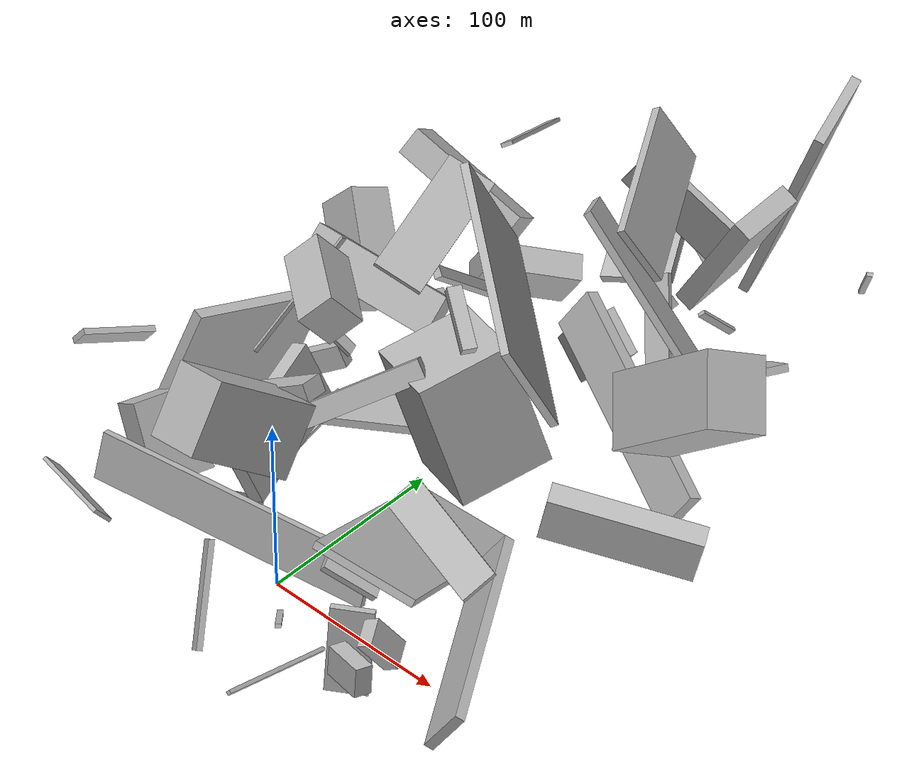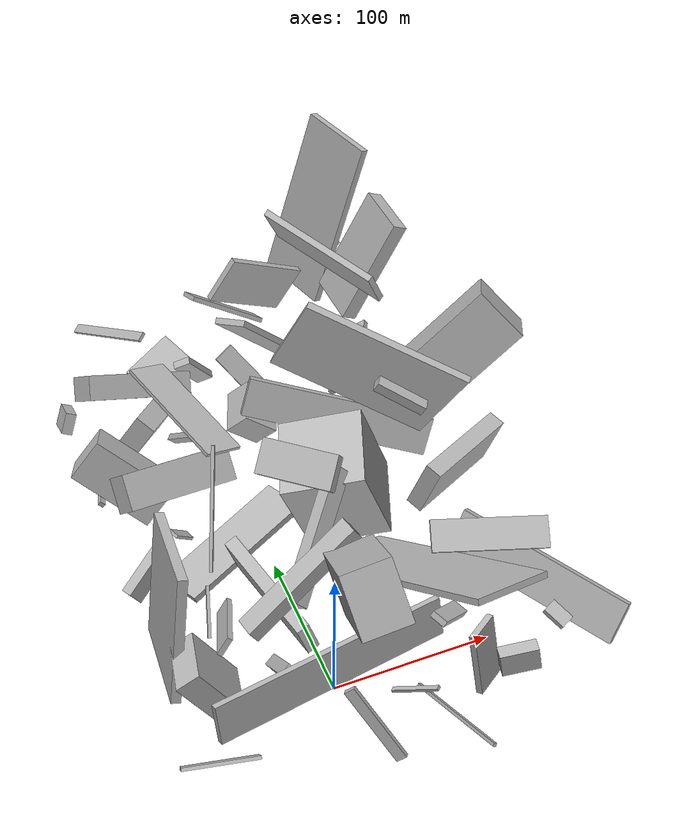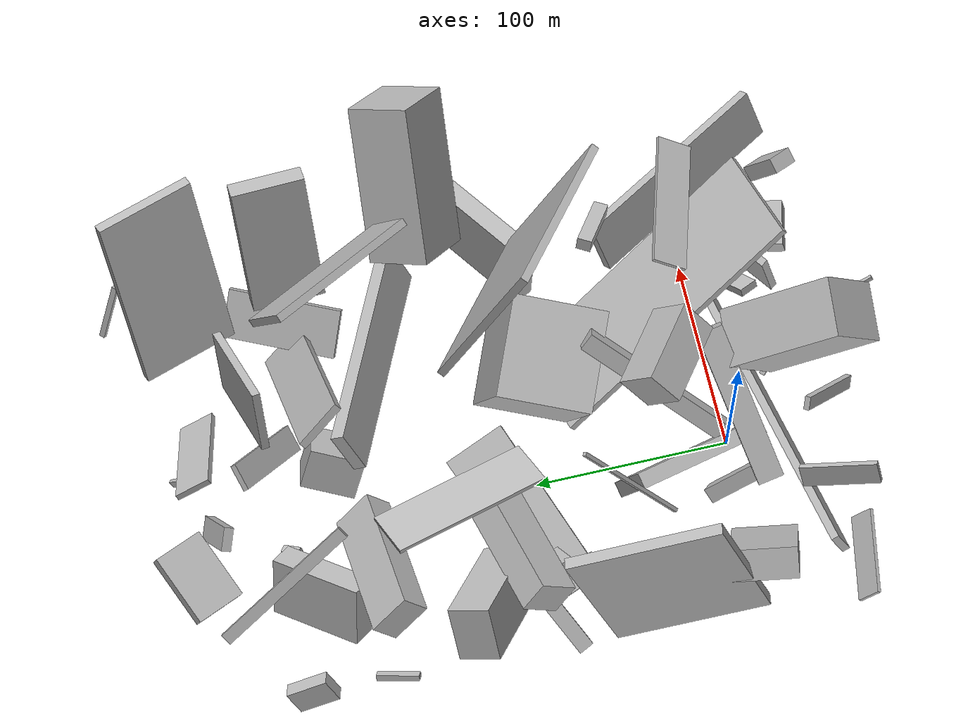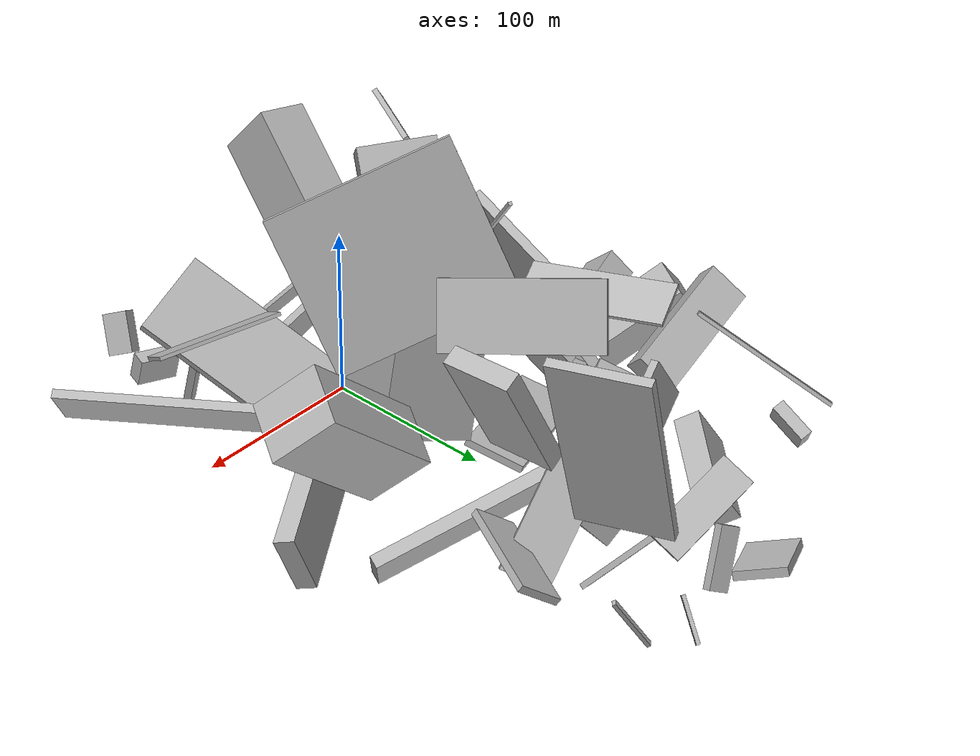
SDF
<sdf version="1.6">
 <world name="default">
  <model name="building_3">
   <static>0</static>
   <pose>-55.28225506362537 196.1160932820637 103.23580506193083 2.6990530904863754 -0.6686548601358759 -1.2108224262797935</pose>
   <link name="link">
    <gravity>0</gravity>
    <pose>0 0 7.5 0 0 0</pose>
    <collision name="collision"><geometry><box><size>23 68 15</size></box></geometry></collision>
    <visual name="visual">
     <cast_shadows>0</cast_shadows>
     <geometry><box><size>23 68 15</size></box></geometry>
     <material>
      <script>
       <uri>model://HANNAS_wall/materials/scripts</uri>
       <uri>model://HANNAS_wall/materials/textures</uri>
       <name>vrc/HANNAS_wall</name>
      </script>
     </material>
    </visual>
   </link>
  </model>
  <model name="building_8">
   <static>0</static>
   <pose>42.81483554489154 18.11997255370308 60.03226280761964 2.0090533513955946 -0.9623262912604077 1.4473765185540202</pose>
   <link name="link">
    <gravity>0</gravity>
    <pose>0 0 26.5 0 0 0</pose>
    <collision name="collision"><geometry><box><size>4 150 53</size></box></geometry></collision>
    <visual name="visual">
     <cast_shadows>0</cast_shadows>
     <geometry><box><size>4 150 53</size></box></geometry>
     <material>
      <script>
       <uri>model://HANNAS_wall/materials/scripts</uri>
       <uri>model://HANNAS_wall/materials/textures</uri>
       <name>vrc/HANNAS_wall</name>
      </script>
     </material>
    </visual>
   </link>
  </model>
  <model name="building_9">
   <static>0</static>
   <pose>55.40457712910734 117.85381674948677 116.89519842510563 0.4024356207725402 -0.32763654302624207 0.8200217314600851</pose>
   <link name="link">
    <gravity>0</gravity>
    <pose>0 0 43.5 0 0 0</pose>
    <collision name="collision"><geometry><box><size>4 99 87</size></box></geometry></collision>
    <visual name="visual">
     <cast_shadows>0</cast_shadows>
     <geometry><box><size>4 99 87</size></box></geometry>
     <material>
      <script>
       <uri>model://HANNAS_wall/materials/scripts</uri>
       <uri>model://HANNAS_wall/materials/textures</uri>
       <name>vrc/HANNAS_wall</name>
      </script>
     </material>
    </visual>
   </link>
  </model>
  <model name="building_22">
   <static>0</static>
   <pose>-9.055808616856012 -22.570312768813796 37.857318943666606 -0.3160825522196778 0.05846673091310445 0.19661354772006312</pose>
   <link name="link">
    <gravity>0</gravity>
    <pose>0 0 12.5 0 0 0</pose>
    <collision name="collision"><geometry><box><size>150 4 25</size></box></geometry></collision>
    <visual name="visual">
     <cast_shadows>0</cast_shadows>
     <geometry><box><size>150 4 25</size></box></geometry>
     <material>
      <script>
       <uri>model://HANNAS_wall/materials/scripts</uri>
       <uri>model://HANNAS_wall/materials/textures</uri>
       <name>vrc/HANNAS_wall</name>
      </script>
     </material>
    </visual>
   </link>
  </model>
  <model name="building_23">
   <static>0</static>
   <pose>98.3337527439675 45.10996295531062 53.80040420355921 1.6647293245427262 -0.9957674719654037 0.4722553468294991</pose>
   <link name="link">
    <gravity>0</gravity>
    <pose>0 0 56.5 0 0 0</pose>
    <collision name="collision"><geometry><box><size>27 5 113</size></box></geometry></collision>
    <visual name="visual">
     <cast_shadows>0</cast_shadows>
     <geometry><box><size>27 5 113</size></box></geometry>
     <material>
      <script>
       <uri>model://HANNAS_wall/materials/scripts</uri>
       <uri>model://HANNAS_wall/materials/textures</uri>
       <name>vrc/HANNAS_wall</name>
      </script>
     </material>
    </visual>
   </link>
  </model>
  <model name="building_25">
   <static>0</static>
   <pose>32.33401957300136 238.51472650263446 98.40388044989416 -0.5680434460506295 0.11449184152743144 -1.4145679435280494</pose>
   <link name="link">
    <gravity>0</gravity>
    <pose>0 0 16.0 0 0 0</pose>
    <collision name="collision"><geometry><box><size>4 59 32</size></box></geometry></collision>
    <visual name="visual">
     <cast_shadows>0</cast_shadows>
     <geometry><box><size>4 59 32</size></box></geometry>
     <material>
      <script>
       <uri>model://HANNAS_wall/materials/scripts</uri>
       <uri>model://HANNAS_wall/materials/textures</uri>
       <name>vrc/HANNAS_wall</name>
      </script>
     </material>
    </visual>
   </link>
  </model>
  <model name="building_27">
   <static>0</static>
   <pose>-58.411665902401865 201.56083246318798 39.52666035498493 -1.8922600408789696 0.49958050123174225 -0.8573434355961012</pose>
   <link name="link">
    <gravity>0</gravity>
    <pose>0 0 24.5 0 0 0</pose>
    <collision name="collision"><geometry><box><size>14 32 49</size></box></geometry></collision>
    <visual name="visual">
     <cast_shadows>0</cast_shadows>
     <geometry><box><size>14 32 49</size></box></geometry>
     <material>
      <script>
       <uri>model://HANNAS_wall/materials/scripts</uri>
       <uri>model://HANNAS_wall/materials/textures</uri>
       <name>vrc/HANNAS_wall</name>
      </script>
     </material>
    </visual>
   </link>
  </model>
  <model name="building_40">
   <static>0</static>
   <pose>14.613063417208839 99.97085694323675 71.01280587332714 1.292325298984231 -0.21804532078687464 1.227320973306203</pose>
   <link name="link">
    <gravity>0</gravity>
    <pose>0 0 25.5 0 0 0</pose>
    <collision name="collision"><geometry><box><size>48 66 51</size></box></geometry></collision>
    <visual name="visual">
     <cast_shadows>0</cast_shadows>
     <geometry><box><size>48 66 51</size></box></geometry>
     <material>
      <script>
       <uri>model://HANNAS_wall/materials/scripts</uri>
       <uri>model://HANNAS_wall/materials/textures</uri>
       <name>vrc/HANNAS_wall</name>
      </script>
     </material>
    </visual>
   </link>
  </model>
  <model name="building_41">
   <static>0</static>
   <pose>17.09584221940473 204.33313077075593 28.518339037300265 -0.7075024303104669 0.24100345131429876 -1.9526094129967237</pose>
   <link name="link">
    <gravity>0</gravity>
    <pose>0 0 10.5 0 0 0</pose>
    <collision name="collision"><geometry><box><size>28 25 21</size></box></geometry></collision>
    <visual name="visual">
     <cast_shadows>0</cast_shadows>
     <geometry><box><size>28 25 21</size></box></geometry>
     <material>
      <script>
       <uri>model://HANNAS_wall/materials/scripts</uri>
       <uri>model://HANNAS_wall/materials/textures</uri>
       <name>vrc/HANNAS_wall</name>
      </script>
     </material>
    </visual>
   </link>
  </model>
  <model name="building_45">
   <static>0</static>
   <pose>71.7340550363893 171.9143882764367 42.41271891080815 0.5395945788814563 -0.9973067526005303 0.6979869216116512</pose>
   <link name="link">
    <gravity>0</gravity>
    <pose>0 0 3.5 0 0 0</pose>
    <collision name="collision"><geometry><box><size>25 124 7</size></box></geometry></collision>
    <visual name="visual">
     <cast_shadows>0</cast_shadows>
     <geometry><box><size>25 124 7</size></box></geometry>
     <material>
      <script>
       <uri>model://HANNAS_wall/materials/scripts</uri>
       <uri>model://HANNAS_wall/materials/textures</uri>
       <name>vrc/HANNAS_wall</name>
      </script>
     </material>
    </visual>
   </link>
  </model>
  <model name="building_53">
   <static>0</static>
   <pose>8.089260865041593 -41.882839322425546 114.44893457125949 0.2383154916501212 -0.680165497755677 -1.790175711627763</pose>
   <link name="link">
    <gravity>0</gravity>
    <pose>0 0 18.5 0 0 0</pose>
    <collision name="collision"><geometry><box><size>63 29 37</size></box></geometry></collision>
    <visual name="visual">
     <cast_shadows>0</cast_shadows>
     <geometry><box><size>63 29 37</size></box></geometry>
     <material>
      <script>
       <uri>model://HANNAS_wall/materials/scripts</uri>
       <uri>model://HANNAS_wall/materials/textures</uri>
       <name>vrc/HANNAS_wall</name>
      </script>
     </material>
    </visual>
   </link>
  </model>
  <model name="building_57">
   <static>0</static>
   <pose>120.66175318878281 105.96668498918326 27.74638264042628 0.19811287483000084 -0.2628121662717593 2.068453796951392</pose>
   <link name="link">
    <gravity>0</gravity>
    <pose>0 0 17.0 0 0 0</pose>
    <collision name="collision"><geometry><box><size>11 76 34</size></box></geometry></collision>
    <visual name="visual">
     <cast_shadows>0</cast_shadows>
     <geometry><box><size>11 76 34</size></box></geometry>
     <material>
      <script>
       <uri>model://HANNAS_wall/materials/scripts</uri>
       <uri>model://HANNAS_wall/materials/textures</uri>
       <name>vrc/HANNAS_wall</name>
      </script>
     </material>
    </visual>
   </link>
  </model>
  <model name="building_59">
   <static>0</static>
   <pose>89.09729887333867 -26.864553109068638 34.10326478492359 -1.5229319122927119 0.21350409970164158 2.184055917871814</pose>
   <link name="link">
    <gravity>0</gravity>
    <pose>0 0 10.5 0 0 0</pose>
    <collision name="collision"><geometry><box><size>4 45 21</size></box></geometry></collision>
    <visual name="visual">
     <cast_shadows>0</cast_shadows>
     <geometry><box><size>4 45 21</size></box></geometry>
     <material>
      <script>
       <uri>model://HANNAS_wall/materials/scripts</uri>
       <uri>model://HANNAS_wall/materials/textures</uri>
       <name>vrc/HANNAS_wall</name>
      </script>
     </material>
    </visual>
   </link>
  </model>
  <model name="building_60">
   <static>0</static>
   <pose>62.396064117582455 -10.39331776606398 59.719843827986786 1.7917326604913815 0.5839372740204062 0.5923617965788625</pose>
   <link name="link">
    <gravity>0</gravity>
    <pose>0 0 5.0 0 0 0</pose>
    <collision name="collision"><geometry><box><size>29 4 10</size></box></geometry></collision>
    <visual name="visual">
     <cast_shadows>0</cast_shadows>
     <geometry><box><size>29 4 10</size></box></geometry>
     <material>
      <script>
       <uri>model://HANNAS_wall/materials/scripts</uri>
       <uri>model://HANNAS_wall/materials/textures</uri>
       <name>vrc/HANNAS_wall</name>
      </script>
     </material>
    </visual>
   </link>
  </model>
  <model name="building_63">
   <static>0</static>
   <pose>-8.69810879139225 227.7854453992578 10.770981519292176 1.1458900006279065 1.0801375589387874 -2.5835345688343567</pose>
   <link name="link">
    <gravity>0</gravity>
    <pose>0 0 2.0 0 0 0</pose>
    <collision name="collision"><geometry><box><size>4 10 4</size></box></geometry></collision>
    <visual name="visual">
     <cast_shadows>0</cast_shadows>
     <geometry><box><size>4 10 4</size></box></geometry>
     <material>
      <script>
       <uri>model://HANNAS_wall/materials/scripts</uri>
       <uri>model://HANNAS_wall/materials/textures</uri>
       <name>vrc/HANNAS_wall</name>
      </script>
     </material>
    </visual>
   </link>
  </model>
  <model name="building_65">
   <static>0</static>
   <pose>-61.3412429722499 128.63337404314132 58.414573460599954 -0.918164395869568 0.3690159313445459 1.2151778657357308</pose>
   <link name="link">
    <gravity>0</gravity>
    <pose>0 0 27.5 0 0 0</pose>
    <collision name="collision"><geometry><box><size>21 28 55</size></box></geometry></collision>
    <visual name="visual">
     <cast_shadows>0</cast_shadows>
     <geometry><box><size>21 28 55</size></box></geometry>
     <material>
      <script>
       <uri>model://HANNAS_wall/materials/scripts</uri>
       <uri>model://HANNAS_wall/materials/textures</uri>
       <name>vrc/HANNAS_wall</name>
      </script>
     </material>
    </visual>
   </link>
  </model>
  <model name="building_72">
   <static>0</static>
   <pose>45.17924721437402 217.96877186514428 70.36531661152894 -0.9560624535688035 -0.8031099361710925 -3.07569080359987</pose>
   <link name="link">
    <gravity>0</gravity>
    <pose>0 0 13.0 0 0 0</pose>
    <collision name="collision"><geometry><box><size>112 4 26</size></box></geometry></collision>
    <visual name="visual">
     <cast_shadows>0</cast_shadows>
     <geometry><box><size>112 4 26</size></box></geometry>
     <material>
      <script>
       <uri>model://HANNAS_wall/materials/scripts</uri>
       <uri>model://HANNAS_wall/materials/textures</uri>
       <name>vrc/HANNAS_wall</name>
      </script>
     </material>
    </visual>
   </link>
  </model>
  <model name="building_74">
   <static>0</static>
   <pose>-19.649366068964433 10.897274502834936 76.36203157556972 0.9369359177109535 -0.8260093751514342 2.931466405032221</pose>
   <link name="link">
    <gravity>0</gravity>
    <pose>0 0 42.0 0 0 0</pose>
    <collision name="collision"><geometry><box><size>11 9 84</size></box></geometry></collision>
    <visual name="visual">
     <cast_shadows>0</cast_shadows>
     <geometry><box><size>11 9 84</size></box></geometry>
     <material>
      <script>
       <uri>model://HANNAS_wall/materials/scripts</uri>
       <uri>model://HANNAS_wall/materials/textures</uri>
       <name>vrc/HANNAS_wall</name>
      </script>
     </material>
    </visual>
   </link>
  </model>
  <model name="building_76">
   <static>0</static>
   <pose>-33.566093893904075 270.55068267836515 16.515326761421967 -1.29439821566283 0.3002165453064288 -1.0742808953305902</pose>
   <link name="link">
    <gravity>0</gravity>
    <pose>0 0 19.0 0 0 0</pose>
    <collision name="collision"><geometry><box><size>28 5 38</size></box></geometry></collision>
    <visual name="visual">
     <cast_shadows>0</cast_shadows>
     <geometry><box><size>28 5 38</size></box></geometry>
     <material>
      <script>
       <uri>model://HANNAS_wall/materials/scripts</uri>
       <uri>model://HANNAS_wall/materials/textures</uri>
       <name>vrc/HANNAS_wall</name>
      </script>
     </material>
    </visual>
   </link>
  </model>
  <model name="building_81">
   <static>0</static>
   <pose>75.40419346455789 258.6322468052874 86.25550073065524 -0.04754921811994838 -0.31978002508036424 -2.7916147015967976</pose>
   <link name="link">
    <gravity>0</gravity>
    <pose>0 0 56.5 0 0 0</pose>
    <collision name="collision"><geometry><box><size>5 49 113</size></box></geometry></collision>
    <visual name="visual">
     <cast_shadows>0</cast_shadows>
     <geometry><box><size>5 49 113</size></box></geometry>
     <material>
      <script>
       <uri>model://HANNAS_wall/materials/scripts</uri>
       <uri>model://HANNAS_wall/materials/textures</uri>
       <name>vrc/HANNAS_wall</name>
      </script>
     </material>
    </visual>
   </link>
  </model>
  <model name="building_85">
   <static>0</static>
   <pose>-29.98986887952206 164.1099198380301 66.02049776245626 0.9530126305066565 -0.5543416776736872 2.6677261571701316</pose>
   <link name="link">
    <gravity>0</gravity>
    <pose>0 0 2.0 0 0 0</pose>
    <collision name="collision"><geometry><box><size>6 85 4</size></box></geometry></collision>
    <visual name="visual">
     <cast_shadows>0</cast_shadows>
     <geometry><box><size>6 85 4</size></box></geometry>
     <material>
      <script>
       <uri>model://HANNAS_wall/materials/scripts</uri>
       <uri>model://HANNAS_wall/materials/textures</uri>
       <name>vrc/HANNAS_wall</name>
      </script>
     </material>
    </visual>
   </link>
  </model>
  <model name="building_88">
   <static>0</static>
   <pose>-27.449427481589602 127.30207428584652 15.688930625676312 -1.3044661306192447 0.19408184990522565 -2.7651050228242573</pose>
   <link name="link">
    <gravity>0</gravity>
    <pose>0 0 16.5 0 0 0</pose>
    <collision name="collision"><geometry><box><size>90 4 33</size></box></geometry></collision>
    <visual name="visual">
     <cast_shadows>0</cast_shadows>
     <geometry><box><size>90 4 33</size></box></geometry>
     <material>
      <script>
       <uri>model://HANNAS_wall/materials/scripts</uri>
       <uri>model://HANNAS_wall/materials/textures</uri>
       <name>vrc/HANNAS_wall</name>
      </script>
     </material>
    </visual>
   </link>
  </model>
  <model name="building_97">
   <static>0</static>
   <pose>74.92024204567053 52.76219711886922 158.78686503340927 -1.0666500312799656 0.02078865635765667 1.0351849961601958</pose>
   <link name="link">
    <gravity>0</gravity>
    <pose>0 0 15.5 0 0 0</pose>
    <collision name="collision"><geometry><box><size>7 6 31</size></box></geometry></collision>
    <visual name="visual">
     <cast_shadows>0</cast_shadows>
     <geometry><box><size>7 6 31</size></box></geometry>
     <material>
      <script>
       <uri>model://HANNAS_wall/materials/scripts</uri>
       <uri>model://HANNAS_wall/materials/textures</uri>
       <name>vrc/HANNAS_wall</name>
      </script>
     </material>
    </visual>
   </link>
  </model>
  <model name="building_104">
   <static>0</static>
   <pose>-64.87136049951255 -1.5872855018063063 28.597710219060026 0.596288286334263 -0.11358219780877257 -1.77367795127317</pose>
   <link name="link">
    <gravity>0</gravity>
    <pose>0 0 21.0 0 0 0</pose>
    <collision name="collision"><geometry><box><size>33 16 42</size></box></geometry></collision>
    <visual name="visual">
     <cast_shadows>0</cast_shadows>
     <geometry><box><size>33 16 42</size></box></geometry>
     <material>
      <script>
       <uri>model://HANNAS_wall/materials/scripts</uri>
       <uri>model://HANNAS_wall/materials/textures</uri>
       <name>vrc/HANNAS_wall</name>
      </script>
     </material>
    </visual>
   </link>
  </model>
  <model name="building_107">
   <static>0</static>
   <pose>-81.32505297785947 109.4312137848554 23.541807014322096 -1.3242114365454367 0.4692168317637345 -2.61707283413217</pose>
   <link name="link">
    <gravity>0</gravity>
    <pose>0 0 4.0 0 0 0</pose>
    <collision name="collision"><geometry><box><size>36 12 8</size></box></geometry></collision>
    <visual name="visual">
     <cast_shadows>0</cast_shadows>
     <geometry><box><size>36 12 8</size></box></geometry>
     <material>
      <script>
       <uri>model://HANNAS_wall/materials/scripts</uri>
       <uri>model://HANNAS_wall/materials/textures</uri>
       <name>vrc/HANNAS_wall</name>
      </script>
     </material>
    </visual>
   </link>
  </model>
  <model name="building_114">
   <static>0</static>
   <pose>-21.806508819982408 33.442919600578634 50.7061628729218 0.32352230922870706 0.15522749503296213 -1.2987762000855674</pose>
   <link name="link">
    <gravity>0</gravity>
    <pose>0 0 18.0 0 0 0</pose>
    <collision name="collision"><geometry><box><size>70 8 36</size></box></geometry></collision>
    <visual name="visual">
     <cast_shadows>0</cast_shadows>
     <geometry><box><size>70 8 36</size></box></geometry>
     <material>
      <script>
       <uri>model://HANNAS_wall/materials/scripts</uri>
       <uri>model://HANNAS_wall/materials/textures</uri>
       <name>vrc/HANNAS_wall</name>
      </script>
     </material>
    </visual>
   </link>
  </model>
  <model name="building_121">
   <static>0</static>
   <pose>-57.0336386271707 45.25344324108331 83.87728832393101 -0.11710797696540369 0.6887519796007496 0.9693267213961914</pose>
   <link name="link">
    <gravity>0</gravity>
    <pose>0 0 36.0 0 0 0</pose>
    <collision name="collision"><geometry><box><size>2 2 72</size></box></geometry></collision>
    <visual name="visual">
     <cast_shadows>0</cast_shadows>
     <geometry><box><size>2 2 72</size></box></geometry>
     <material>
      <script>
       <uri>model://HANNAS_wall/materials/scripts</uri>
       <uri>model://HANNAS_wall/materials/textures</uri>
       <name>vrc/HANNAS_wall</name>
      </script>
     </material>
    </visual>
   </link>
  </model>
  <model name="building_126">
   <static>0</static>
   <pose>99.53181889617133 8.691943916124309 87.69631208684653 0.5254192341341997 0.05582609954995539 -0.2833288817607553</pose>
   <link name="link">
    <gravity>0</gravity>
    <pose>0 0 1.0 0 0 0</pose>
    <collision name="collision"><geometry><box><size>69 19 2</size></box></geometry></collision>
    <visual name="visual">
     <cast_shadows>0</cast_shadows>
     <geometry><box><size>69 19 2</size></box></geometry>
     <material>
      <script>
       <uri>model://HANNAS_wall/materials/scripts</uri>
       <uri>model://HANNAS_wall/materials/textures</uri>
       <name>vrc/HANNAS_wall</name>
      </script>
     </material>
    </visual>
   </link>
  </model>
  <model name="building_128">
   <static>0</static>
   <pose>-0.9567967907580872 46.34859702361704 147.93016849592846 -0.09559002140764897 0.6890864188170976 -2.268539798478727</pose>
   <link name="link">
    <gravity>0</gravity>
    <pose>0 0 11.5 0 0 0</pose>
    <collision name="collision"><geometry><box><size>20 42 23</size></box></geometry></collision>
    <visual name="visual">
     <cast_shadows>0</cast_shadows>
     <geometry><box><size>20 42 23</size></box></geometry>
     <material>
      <script>
       <uri>model://HANNAS_wall/materials/scripts</uri>
       <uri>model://HANNAS_wall/materials/textures</uri>
       <name>vrc/HANNAS_wall</name>
      </script>
     </material>
    </visual>
   </link>
  </model>
  <model name="building_130">
   <static>0</static>
   <pose>48.88215898093908 221.52479328542944 171.55910941974992 1.837455787269737 1.0331312649721516 0.7527288349032589</pose>
   <link name="link">
    <gravity>0</gravity>
    <pose>0 0 40.0 0 0 0</pose>
    <collision name="collision"><geometry><box><size>35 4 80</size></box></geometry></collision>
    <visual name="visual">
     <cast_shadows>0</cast_shadows>
     <geometry><box><size>35 4 80</size></box></geometry>
     <material>
      <script>
       <uri>model://HANNAS_wall/materials/scripts</uri>
       <uri>model://HANNAS_wall/materials/textures</uri>
       <name>vrc/HANNAS_wall</name>
      </script>
     </material>
    </visual>
   </link>
  </model>
  <model name="building_132">
   <static>0</static>
   <pose>-32.86733781594625 6.919693454143404 32.70234783522245 -2.562675145918974 -0.7190671212905725 -1.5526019696133229</pose>
   <link name="link">
    <gravity>0</gravity>
    <pose>0 0 4.0 0 0 0</pose>
    <collision name="collision"><geometry><box><size>33 8 8</size></box></geometry></collision>
    <visual name="visual">
     <cast_shadows>0</cast_shadows>
     <geometry><box><size>33 8 8</size></box></geometry>
     <material>
      <script>
       <uri>model://HANNAS_wall/materials/scripts</uri>
       <uri>model://HANNAS_wall/materials/textures</uri>
       <name>vrc/HANNAS_wall</name>
      </script>
     </material>
    </visual>
   </link>
  </model>
  <model name="building_137">
   <static>0</static>
   <pose>108.07087043226352 235.54284035469266 51.32552827863193 -1.5109208029102812 0.6400132798593834 2.7187418608859204</pose>
   <link name="link">
    <gravity>0</gravity>
    <pose>0 0 29.0 0 0 0</pose>
    <collision name="collision"><geometry><box><size>25 4 58</size></box></geometry></collision>
    <visual name="visual">
     <cast_shadows>0</cast_shadows>
     <geometry><box><size>25 4 58</size></box></geometry>
     <material>
      <script>
       <uri>model://HANNAS_wall/materials/scripts</uri>
       <uri>model://HANNAS_wall/materials/textures</uri>
       <name>vrc/HANNAS_wall</name>
      </script>
     </material>
    </visual>
   </link>
  </model>
  <model name="building_144">
   <static>0</static>
   <pose>-90.54550433203342 233.75934598762757 39.95853931387913 1.1422185721233828 -0.47055177360960665 -1.6141679705223604</pose>
   <link name="link">
    <gravity>0</gravity>
    <pose>0 0 3.5 0 0 0</pose>
    <collision name="collision"><geometry><box><size>22 14 7</size></box></geometry></collision>
    <visual name="visual">
     <cast_shadows>0</cast_shadows>
     <geometry><box><size>22 14 7</size></box></geometry>
     <material>
      <script>
       <uri>model://HANNAS_wall/materials/scripts</uri>
       <uri>model://HANNAS_wall/materials/textures</uri>
       <name>vrc/HANNAS_wall</name>
      </script>
     </material>
    </visual>
   </link>
  </model>
  <model name="building_145">
   <static>0</static>
   <pose>-82.48751530699866 201.39946495779546 7.22865489900468 -1.3207373044758943 -0.6601715939080046 2.69489348794703</pose>
   <link name="link">
    <gravity>0</gravity>
    <pose>0 0 11.0 0 0 0</pose>
    <collision name="collision"><geometry><box><size>4 3 22</size></box></geometry></collision>
    <visual name="visual">
     <cast_shadows>0</cast_shadows>
     <geometry><box><size>4 3 22</size></box></geometry>
     <material>
      <script>
       <uri>model://HANNAS_wall/materials/scripts</uri>
       <uri>model://HANNAS_wall/materials/textures</uri>
       <name>vrc/HANNAS_wall</name>
      </script>
     </material>
    </visual>
   </link>
  </model>
  <model name="building_160">
   <static>0</static>
   <pose>-79.50129783488231 53.32705327912343 53.97057574649375 1.3902607413590413 -0.3410643997548671 -1.682143725974149</pose>
   <link name="link">
    <gravity>0</gravity>
    <pose>0 0 3.0 0 0 0</pose>
    <collision name="collision"><geometry><box><size>80 80 6</size></box></geometry></collision>
    <visual name="visual">
     <cast_shadows>0</cast_shadows>
     <geometry><box><size>80 80 6</size></box></geometry>
     <material>
      <script>
       <uri>model://HANNAS_wall/materials/scripts</uri>
       <uri>model://HANNAS_wall/materials/textures</uri>
       <name>vrc/HANNAS_wall</name>
      </script>
     </material>
    </visual>
   </link>
  </model>
  <model name="building_161">
   <static>0</static>
   <pose>-64.22088744225104 -50.66970434201275 37.52819026922488 -1.5149862609717681 0.9293636907214444 1.4341708400387678</pose>
   <link name="link">
    <gravity>0</gravity>
    <pose>0 0 22.0 0 0 0</pose>
    <collision name="collision"><geometry><box><size>14 2 44</size></box></geometry></collision>
    <visual name="visual">
     <cast_shadows>0</cast_shadows>
     <geometry><box><size>14 2 44</size></box></geometry>
     <material>
      <script>
       <uri>model://HANNAS_wall/materials/scripts</uri>
       <uri>model://HANNAS_wall/materials/textures</uri>
       <name>vrc/HANNAS_wall</name>
      </script>
     </material>
    </visual>
   </link>
  </model>
  <model name="building_167">
   <static>0</static>
   <pose>-50.873161901696896 118.1238660691389 86.38721974592474 -2.380123763513086 0.2272606792255713 0.2226647863508987</pose>
   <link name="link">
    <gravity>0</gravity>
    <pose>0 0 8.5 0 0 0</pose>
    <collision name="collision"><geometry><box><size>73 22 17</size></box></geometry></collision>
    <visual name="visual">
     <cast_shadows>0</cast_shadows>
     <geometry><box><size>73 22 17</size></box></geometry>
     <material>
      <script>
       <uri>model://HANNAS_wall/materials/scripts</uri>
       <uri>model://HANNAS_wall/materials/textures</uri>
       <name>vrc/HANNAS_wall</name>
      </script>
     </material>
    </visual>
   </link>
  </model>
  <model name="building_169">
   <static>0</static>
   <pose>-78.3692893725243 -45.74531803307898 138.57211989078274 1.9789048534516198 -0.5159274627951586 2.6172112245147283</pose>
   <link name="link">
    <gravity>0</gravity>
    <pose>0 0 19.0 0 0 0</pose>
    <collision name="collision"><geometry><box><size>3 11 38</size></box></geometry></collision>
    <visual name="visual">
     <cast_shadows>0</cast_shadows>
     <geometry><box><size>3 11 38</size></box></geometry>
     <material>
      <script>
       <uri>model://HANNAS_wall/materials/scripts</uri>
       <uri>model://HANNAS_wall/materials/textures</uri>
       <name>vrc/HANNAS_wall</name>
      </script>
     </material>
    </visual>
   </link>
  </model>
  <model name="building_171">
   <static>0</static>
   <pose>85.23677022312012 205.96904670684214 109.30049004744944 -0.022050282180032386 -0.4914566239142433 -3.082736674334253</pose>
   <link name="link">
    <gravity>0</gravity>
    <pose>0 0 35.5 0 0 0</pose>
    <collision name="collision"><geometry><box><size>10 36 71</size></box></geometry></collision>
    <visual name="visual">
     <cast_shadows>0</cast_shadows>
     <geometry><box><size>10 36 71</size></box></geometry>
     <material>
      <script>
       <uri>model://HANNAS_wall/materials/scripts</uri>
       <uri>model://HANNAS_wall/materials/textures</uri>
       <name>vrc/HANNAS_wall</name>
      </script>
     </material>
    </visual>
   </link>
  </model>
  <model name="building_181">
   <static>0</static>
   <pose>1.5425011008789706 -50.80012065943278 30.027755233943765 -0.46167124133367565 0.801945872292175 -0.9749104600228118</pose>
   <link name="link">
    <gravity>0</gravity>
    <pose>0 0 3.5 0 0 0</pose>
    <collision name="collision"><geometry><box><size>52 3 7</size></box></geometry></collision>
    <visual name="visual">
     <cast_shadows>0</cast_shadows>
     <geometry><box><size>52 3 7</size></box></geometry>
     <material>
      <script>
       <uri>model://HANNAS_wall/materials/scripts</uri>
       <uri>model://HANNAS_wall/materials/textures</uri>
       <name>vrc/HANNAS_wall</name>
      </script>
     </material>
    </visual>
   </link>
  </model>
  <model name="building_185">
   <static>0</static>
   <pose>-36.65419098368977 147.8015894349121 111.94348299716688 -3.0297742083048727 0.39672433418016184 0.33445932132647677</pose>
   <link name="link">
    <gravity>0</gravity>
    <pose>0 0 1.0 0 0 0</pose>
    <collision name="collision"><geometry><box><size>26 80 2</size></box></geometry></collision>
    <visual name="visual">
     <cast_shadows>0</cast_shadows>
     <geometry><box><size>26 80 2</size></box></geometry>
     <material>
      <script>
       <uri>model://HANNAS_wall/materials/scripts</uri>
       <uri>model://HANNAS_wall/materials/textures</uri>
       <name>vrc/HANNAS_wall</name>
      </script>
     </material>
    </visual>
   </link>
  </model>
  <model name="building_189">
   <static>0</static>
   <pose>93.95152737515347 -45.70087333279344 49.60324598818932 2.9949750163343016 0.16388753381032997 1.3200592473786201</pose>
   <link name="link">
    <gravity>0</gravity>
    <pose>0 0 7.5 0 0 0</pose>
    <collision name="collision"><geometry><box><size>9 23 15</size></box></geometry></collision>
    <visual name="visual">
     <cast_shadows>0</cast_shadows>
     <geometry><box><size>9 23 15</size></box></geometry>
     <material>
      <script>
       <uri>model://HANNAS_wall/materials/scripts</uri>
       <uri>model://HANNAS_wall/materials/textures</uri>
       <name>vrc/HANNAS_wall</name>
      </script>
     </material>
    </visual>
   </link>
  </model>
  <model name="building_192">
   <static>0</static>
   <pose>-52.100339583031605 72.66710903251504 11.441203219115796 -1.3472392362945482 -0.6773969748973838 1.2535304661408047</pose>
   <link name="link">
    <gravity>0</gravity>
    <pose>0 0 1.0 0 0 0</pose>
    <collision name="collision"><geometry><box><size>32 2 2</size></box></geometry></collision>
    <visual name="visual">
     <cast_shadows>0</cast_shadows>
     <geometry><box><size>32 2 2</size></box></geometry>
     <material>
      <script>
       <uri>model://HANNAS_wall/materials/scripts</uri>
       <uri>model://HANNAS_wall/materials/textures</uri>
       <name>vrc/HANNAS_wall</name>
      </script>
     </material>
    </visual>
   </link>
  </model>
  <model name="building_196">
   <static>0</static>
   <pose>-56.333829447061675 99.72448875221471 53.23480526141286 -1.5403307289212698 -0.8022381216080837 0.3555604596261636</pose>
   <link name="link">
    <gravity>0</gravity>
    <pose>0 0 3.5 0 0 0</pose>
    <collision name="collision"><geometry><box><size>2 16 7</size></box></geometry></collision>
    <visual name="visual">
     <cast_shadows>0</cast_shadows>
     <geometry><box><size>2 16 7</size></box></geometry>
     <material>
      <script>
       <uri>model://HANNAS_wall/materials/scripts</uri>
       <uri>model://HANNAS_wall/materials/textures</uri>
       <name>vrc/HANNAS_wall</name>
      </script>
     </material>
    </visual>
   </link>
  </model>
  <model name="building_197">
   <static>0</static>
   <pose>52.47621458628717 -53.53327117494303 18.134532646958107 2.121084547831618 0.41607127608700556 1.7316540711269375</pose>
   <link name="link">
    <gravity>0</gravity>
    <pose>0 0 1.0 0 0 0</pose>
    <collision name="collision"><geometry><box><size>80 2 2</size></box></geometry></collision>
    <visual name="visual">
     <cast_shadows>0</cast_shadows>
     <geometry><box><size>80 2 2</size></box></geometry>
     <material>
      <script>
       <uri>model://HANNAS_wall/materials/scripts</uri>
       <uri>model://HANNAS_wall/materials/textures</uri>
       <name>vrc/HANNAS_wall</name>
      </script>
     </material>
    </visual>
   </link>
  </model>
  <model name="building_205">
   <static>0</static>
   <pose>-19.262234600275917 11.054023517927712 105.01385469987059 -1.236686624332083 -1.015131955002302 2.9855177531799497</pose>
   <link name="link">
    <gravity>0</gravity>
    <pose>0 0 6.5 0 0 0</pose>
    <collision name="collision"><geometry><box><size>9 80 13</size></box></geometry></collision>
    <visual name="visual">
     <cast_shadows>0</cast_shadows>
     <geometry><box><size>9 80 13</size></box></geometry>
     <material>
      <script>
       <uri>model://HANNAS_wall/materials/scripts</uri>
       <uri>model://HANNAS_wall/materials/textures</uri>
       <name>vrc/HANNAS_wall</name>
      </script>
     </material>
    </visual>
   </link>
  </model>
  <model name="building_208">
   <static>0</static>
   <pose>70.48937637542201 59.96982126161657 13.632758592398527 -2.4819232896030203 0.5018702866999006 -2.1943264514335015</pose>
   <link name="link">
    <gravity>0</gravity>
    <pose>0 0 3.5 0 0 0</pose>
    <collision name="collision"><geometry><box><size>10 2 7</size></box></geometry></collision>
    <visual name="visual">
     <cast_shadows>0</cast_shadows>
     <geometry><box><size>10 2 7</size></box></geometry>
     <material>
      <script>
       <uri>model://HANNAS_wall/materials/scripts</uri>
       <uri>model://HANNAS_wall/materials/textures</uri>
       <name>vrc/HANNAS_wall</name>
      </script>
     </material>
    </visual>
   </link>
  </model>
  <model name="building_221">
   <static>0</static>
   <pose>-57.17845026794848 238.20711008950897 101.7332499287809 0.5642048330797098 0.44863214443753807 -2.4762759007871478</pose>
   <link name="link">
    <gravity>0</gravity>
    <pose>0 0 1.0 0 0 0</pose>
    <collision name="collision"><geometry><box><size>6 80 2</size></box></geometry></collision>
    <visual name="visual">
     <cast_shadows>0</cast_shadows>
     <geometry><box><size>6 80 2</size></box></geometry>
     <material>
      <script>
       <uri>model://HANNAS_wall/materials/scripts</uri>
       <uri>model://HANNAS_wall/materials/textures</uri>
       <name>vrc/HANNAS_wall</name>
      </script>
     </material>
    </visual>
   </link>
  </model>
  <model name="building_222">
   <static>0</static>
   <pose>35.223799990564444 -35.52768037190956 25.82294700119205 1.5925208091532321 0.5760738141674808 2.3293444912886234</pose>
   <link name="link">
    <gravity>0</gravity>
    <pose>0 0 1.5 0 0 0</pose>
    <collision name="collision"><geometry><box><size>33 2 3</size></box></geometry></collision>
    <visual name="visual">
     <cast_shadows>0</cast_shadows>
     <geometry><box><size>33 2 3</size></box></geometry>
     <material>
      <script>
       <uri>model://HANNAS_wall/materials/scripts</uri>
       <uri>model://HANNAS_wall/materials/textures</uri>
       <name>vrc/HANNAS_wall</name>
      </script>
     </material>
    </visual>
   </link>
  </model>
  <model name="building_224">
   <static>0</static>
   <pose>105.60401227599246 137.9195672968432 82.78064033870311 0.7508852697978926 0.4175444138503735 1.0999782713068422</pose>
   <link name="link">
    <gravity>0</gravity>
    <pose>0 0 40.0 0 0 0</pose>
    <collision name="collision"><geometry><box><size>32 37 80</size></box></geometry></collision>
    <visual name="visual">
     <cast_shadows>0</cast_shadows>
     <geometry><box><size>32 37 80</size></box></geometry>
     <material>
      <script>
       <uri>model://HANNAS_wall/materials/scripts</uri>
       <uri>model://HANNAS_wall/materials/textures</uri>
       <name>vrc/HANNAS_wall</name>
      </script>
     </material>
    </visual>
   </link>
  </model>
  <model name="building_230">
   <static>0</static>
   <pose>26.713126620947293 274.7593998076396 68.61293310834047 0.8472033877111464 -0.823810040897304 0.6720503756448327</pose>
   <link name="link">
    <gravity>0</gravity>
    <pose>0 0 9.5 0 0 0</pose>
    <collision name="collision"><geometry><box><size>3 52 19</size></box></geometry></collision>
    <visual name="visual">
     <cast_shadows>0</cast_shadows>
     <geometry><box><size>3 52 19</size></box></geometry>
     <material>
      <script>
       <uri>model://HANNAS_wall/materials/scripts</uri>
       <uri>model://HANNAS_wall/materials/textures</uri>
       <name>vrc/HANNAS_wall</name>
      </script>
     </material>
    </visual>
   </link>
  </model>
  <model name="building_236">
   <static>0</static>
   <pose>34.33850922392913 230.71954010273555 31.76984267753796 2.294921159991023 0.44024448657684806 -2.83062638662457</pose>
   <link name="link">
    <gravity>0</gravity>
    <pose>0 0 1.5 0 0 0</pose>
    <collision name="collision"><geometry><box><size>14 58 3</size></box></geometry></collision>
    <visual name="visual">
     <cast_shadows>0</cast_shadows>
     <geometry><box><size>14 58 3</size></box></geometry>
     <material>
      <script>
       <uri>model://HANNAS_wall/materials/scripts</uri>
       <uri>model://HANNAS_wall/materials/textures</uri>
       <name>vrc/HANNAS_wall</name>
      </script>
     </material>
    </visual>
   </link>
  </model>
  <model name="building_246">
   <static>0</static>
   <pose>118.92765226707182 -46.50278114645556 74.76480068042167 -2.509655000056378 0.9666353139909699 1.0389126365503112</pose>
   <link name="link">
    <gravity>0</gravity>
    <pose>0 0 4.0 0 0 0</pose>
    <collision name="collision"><geometry><box><size>22 14 8</size></box></geometry></collision>
    <visual name="visual">
     <cast_shadows>0</cast_shadows>
     <geometry><box><size>22 14 8</size></box></geometry>
     <material>
      <script>
       <uri>model://HANNAS_wall/materials/scripts</uri>
       <uri>model://HANNAS_wall/materials/textures</uri>
       <name>vrc/HANNAS_wall</name>
      </script>
     </material>
    </visual>
   </link>
  </model>
  <model name="building_254">
   <static>0</static>
   <pose>112.02197633040828 291.9836919990404 71.34395437854212 1.668671223729848 -0.5779507858411688 2.241121949423439</pose>
   <link name="link">
    <gravity>0</gravity>
    <pose>0 0 1.5 0 0 0</pose>
    <collision name="collision"><geometry><box><size>2 31 3</size></box></geometry></collision>
    <visual name="visual">
     <cast_shadows>0</cast_shadows>
     <geometry><box><size>2 31 3</size></box></geometry>
     <material>
      <script>
       <uri>model://HANNAS_wall/materials/scripts</uri>
       <uri>model://HANNAS_wall/materials/textures</uri>
       <name>vrc/HANNAS_wall</name>
      </script>
     </material>
    </visual>
   </link>
  </model>
  <model name="building_258">
   <static>0</static>
   <pose>2.7550966067396923 265.80560029467676 26.694830500254522 -2.264135809606252 -0.9423180555959266 -2.7261290569167613</pose>
   <link name="link">
    <gravity>0</gravity>
    <pose>0 0 2.5 0 0 0</pose>
    <collision name="collision"><geometry><box><size>33 12 5</size></box></geometry></collision>
    <visual name="visual">
     <cast_shadows>0</cast_shadows>
     <geometry><box><size>33 12 5</size></box></geometry>
     <material>
      <script>
       <uri>model://HANNAS_wall/materials/scripts</uri>
       <uri>model://HANNAS_wall/materials/textures</uri>
       <name>vrc/HANNAS_wall</name>
      </script>
     </material>
    </visual>
   </link>
  </model>
  <model name="building_271">
   <static>0</static>
   <pose>36.77087441514533 271.53536085208384 12.441800067252158 0.8140001277455736 -0.20834322983073825 2.5135537920246533</pose>
   <link name="link">
    <gravity>0</gravity>
    <pose>0 0 2.0 0 0 0</pose>
    <collision name="collision"><geometry><box><size>2 25 4</size></box></geometry></collision>
    <visual name="visual">
     <cast_shadows>0</cast_shadows>
     <geometry><box><size>2 25 4</size></box></geometry>
     <material>
      <script>
       <uri>model://HANNAS_wall/materials/scripts</uri>
       <uri>model://HANNAS_wall/materials/textures</uri>
       <name>vrc/HANNAS_wall</name>
      </script>
     </material>
    </visual>
   </link>
  </model>
 </world>
</sdf>
